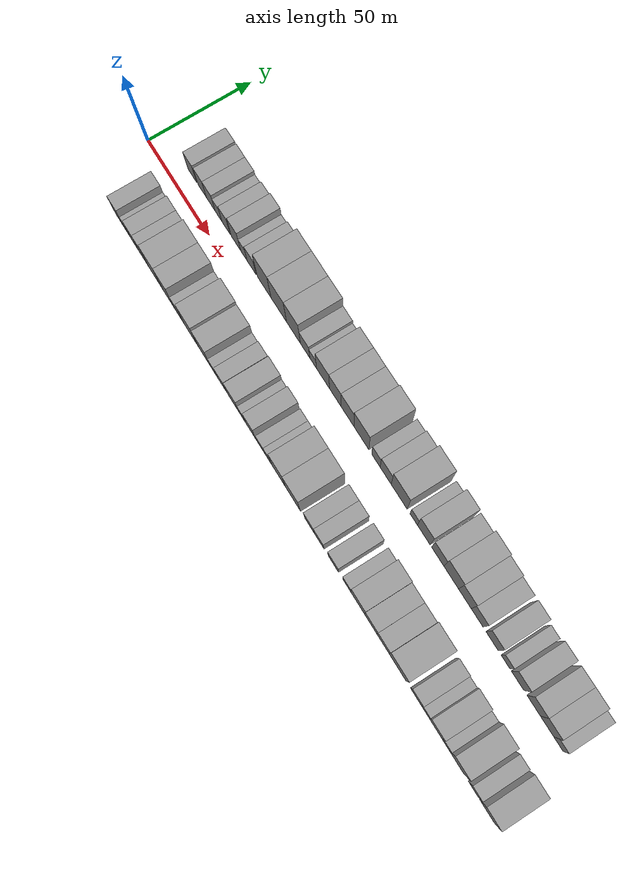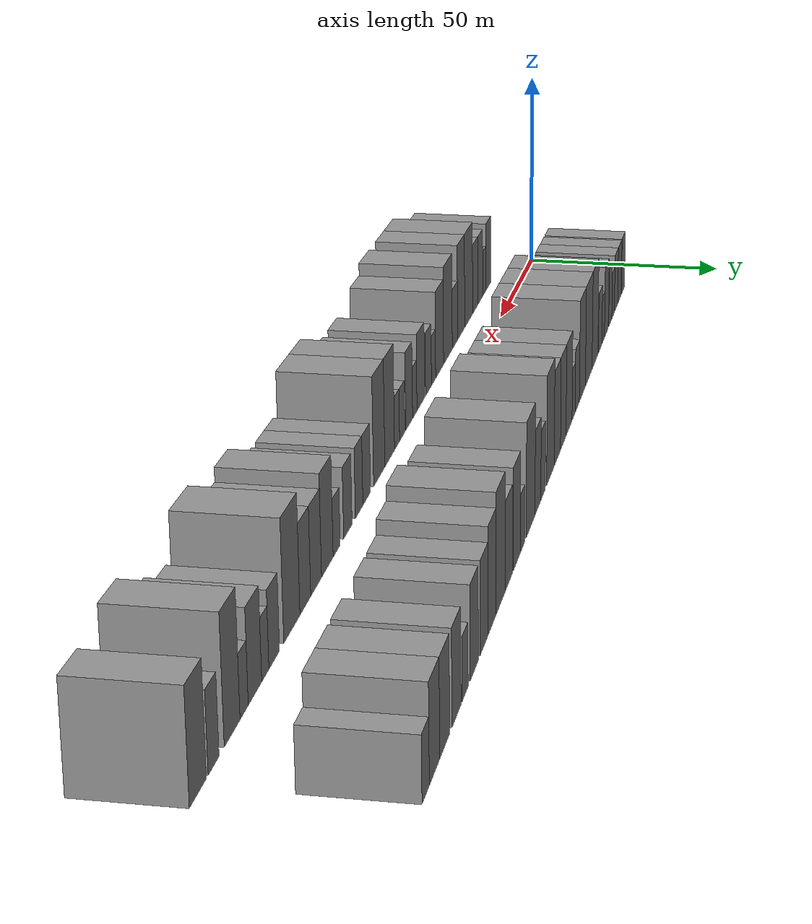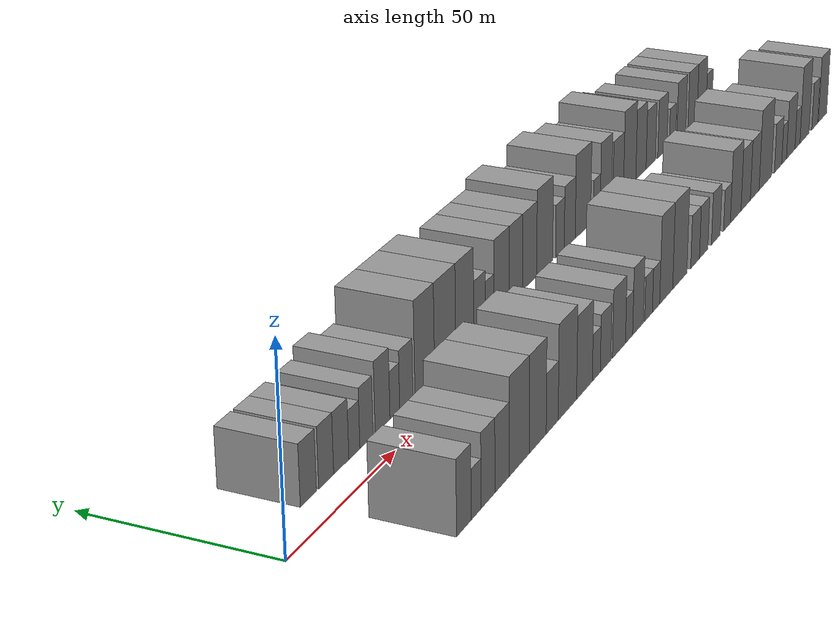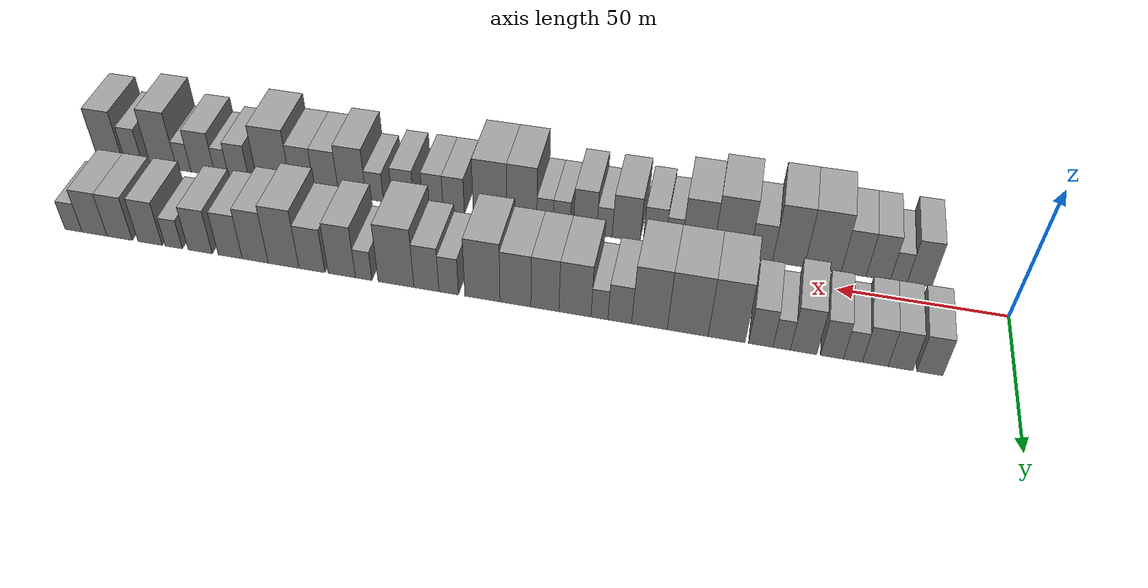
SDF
<sdf version="1.6">
 <world name="default">
  <scene>
   <sky><clouds><speed>12</speed></clouds></sky>
   <ambient>0.4 0.4 0.4 1</ambient>
   <background>0.7 0.7 0.7 1</background>
   <shadows>1</shadows>
  </scene>
  <gravity>0 0 -9.8066</gravity>
  <magnetic_field>6e-06 2.3e-05 -4.2e-05</magnetic_field>
  <physics default="0" name="default_physics" type="ode">
   <ode>
    <solver>
     <type>quick</type>
     <iters>10</iters>
     <sor>1.0</sor>
     <use_dynamic_moi_rescaling>0</use_dynamic_moi_rescaling>
    </solver>
    <constraints>
     <cfm>0</cfm>
     <erp>0.2</erp>
     <contact_max_correcting_vel>100</contact_max_correcting_vel>
     <contact_surface_layer>0.001</contact_surface_layer>
    </constraints>
   </ode>
   <max_step_size>0.004</max_step_size>
   <real_time_factor>1</real_time_factor>
   <real_time_update_rate>250</real_time_update_rate>
  </physics>
  <light name="sun" type="directional">
   <pose>0 0 10 0 0 0</pose>
   <diffuse>0.8 0.8 0.8 1</diffuse>
   <specular>0.2 0.2 0.2 1</specular>
   <attenuation>
    <range>1000</range>
    <constant>0.9</constant>
    <linear>0.01</linear>
    <quadratic>0.001</quadratic>
   </attenuation>
   <direction>-0.5 0.1 -0.9</direction>
  </light>
  <model name="building_1">
   <static>1</static>
   <pose>23.6077 17.5000 0 0.000000 0.000000 1.570796</pose>
   <link name="link">
    <pose>0 0 7.50 0 0 0</pose>
    <collision name="collision"><geometry><box><size>20.0000 7.2154 15.0000</size></box></geometry></collision>
    <visual name="visual">
     <cast_shadows>0</cast_shadows>
     <geometry><box><size>20.0000 7.2154 15.0000</size></box></geometry>
     <material>
      <script>
       <uri>model://grey_wall/materials/scripts</uri>
       <uri>model://grey_wall/materials/textures</uri>
       <name>vrc/grey_wall</name>
      </script>
     </material>
    </visual>
   </link>
  </model>
  <model name="building_2">
   <static>1</static>
   <pose>31.6629 17.5000 0 0.000000 0.000000 1.570796</pose>
   <link name="link">
    <pose>0 0 7.50 0 0 0</pose>
    <collision name="collision"><geometry><box><size>20.0000 6.8950 15.0000</size></box></geometry></collision>
    <visual name="visual">
     <cast_shadows>0</cast_shadows>
     <geometry><box><size>20.0000 6.8950 15.0000</size></box></geometry>
     <material>
      <script>
       <uri>model://grey_wall/materials/scripts</uri>
       <uri>model://grey_wall/materials/textures</uri>
       <name>vrc/grey_wall</name>
      </script>
     </material>
    </visual>
   </link>
  </model>
  <model name="building_3">
   <static>1</static>
   <pose>38.6754 17.5000 0 0.000000 0.000000 1.570796</pose>
   <link name="link">
    <pose>0 0 7.50 0 0 0</pose>
    <collision name="collision"><geometry><box><size>20.0000 7.1300 15.0000</size></box></geometry></collision>
    <visual name="visual">
     <cast_shadows>0</cast_shadows>
     <geometry><box><size>20.0000 7.1300 15.0000</size></box></geometry>
     <material>
      <script>
       <uri>model://grey_wall/materials/scripts</uri>
       <uri>model://grey_wall/materials/textures</uri>
       <name>vrc/grey_wall</name>
      </script>
     </material>
    </visual>
   </link>
  </model>
  <model name="building_4">
   <static>1</static>
   <pose>44.9000 17.5000 0 0.000000 0.000000 1.570796</pose>
   <link name="link">
    <pose>0 0 6.00 0 0 0</pose>
    <collision name="collision"><geometry><box><size>20.0000 5.3193 12.0000</size></box></geometry></collision>
    <visual name="visual">
     <cast_shadows>0</cast_shadows>
     <geometry><box><size>20.0000 5.3193 12.0000</size></box></geometry>
     <material>
      <script>
       <uri>model://grey_wall/materials/scripts</uri>
       <uri>model://grey_wall/materials/textures</uri>
       <name>vrc/grey_wall</name>
      </script>
     </material>
    </visual>
   </link>
  </model>
  <model name="building_5">
   <static>1</static>
   <pose>50.7931 17.5000 0 0.000000 0.000000 1.570796</pose>
   <link name="link">
    <pose>0 0 7.50 0 0 0</pose>
    <collision name="collision"><geometry><box><size>20.0000 6.4668 15.0000</size></box></geometry></collision>
    <visual name="visual">
     <cast_shadows>0</cast_shadows>
     <geometry><box><size>20.0000 6.4668 15.0000</size></box></geometry>
     <material>
      <script>
       <uri>model://grey_wall/materials/scripts</uri>
       <uri>model://grey_wall/materials/textures</uri>
       <name>vrc/grey_wall</name>
      </script>
     </material>
    </visual>
   </link>
  </model>
  <model name="building_6">
   <static>1</static>
   <pose>58.7857 17.5000 0 0.000000 0.000000 1.570796</pose>
   <link name="link">
    <pose>0 0 9.00 0 0 0</pose>
    <collision name="collision"><geometry><box><size>20.0000 7.5184 18.0000</size></box></geometry></collision>
    <visual name="visual">
     <cast_shadows>0</cast_shadows>
     <geometry><box><size>20.0000 7.5184 18.0000</size></box></geometry>
     <material>
      <script>
       <uri>model://grey_wall/materials/scripts</uri>
       <uri>model://grey_wall/materials/textures</uri>
       <name>vrc/grey_wall</name>
      </script>
     </material>
    </visual>
   </link>
  </model>
  <model name="building_7">
   <static>1</static>
   <pose>65.0388 17.5000 0 0.000000 0.000000 1.570796</pose>
   <link name="link">
    <pose>0 0 6.00 0 0 0</pose>
    <collision name="collision"><geometry><box><size>20.0000 4.9879 12.0000</size></box></geometry></collision>
    <visual name="visual">
     <cast_shadows>0</cast_shadows>
     <geometry><box><size>20.0000 4.9879 12.0000</size></box></geometry>
     <material>
      <script>
       <uri>model://grey_wall/materials/scripts</uri>
       <uri>model://grey_wall/materials/textures</uri>
       <name>vrc/grey_wall</name>
      </script>
     </material>
    </visual>
   </link>
  </model>
  <model name="building_8">
   <static>1</static>
   <pose>71.0306 17.5000 0 0.000000 0.000000 1.570796</pose>
   <link name="link">
    <pose>0 0 7.50 0 0 0</pose>
    <collision name="collision"><geometry><box><size>20.0000 6.9957 15.0000</size></box></geometry></collision>
    <visual name="visual">
     <cast_shadows>0</cast_shadows>
     <geometry><box><size>20.0000 6.9957 15.0000</size></box></geometry>
     <material>
      <script>
       <uri>model://grey_wall/materials/scripts</uri>
       <uri>model://grey_wall/materials/textures</uri>
       <name>vrc/grey_wall</name>
      </script>
     </material>
    </visual>
   </link>
  </model>
  <model name="building_9">
   <static>1</static>
   <pose>80.8923 17.5000 0 0.000000 0.000000 1.570796</pose>
   <link name="link">
    <pose>0 0 12.00 0 0 0</pose>
    <collision name="collision"><geometry><box><size>20.0000 10.7277 24.0000</size></box></geometry></collision>
    <visual name="visual">
     <cast_shadows>0</cast_shadows>
     <geometry><box><size>20.0000 10.7277 24.0000</size></box></geometry>
     <material>
      <script>
       <uri>model://grey_wall/materials/scripts</uri>
       <uri>model://grey_wall/materials/textures</uri>
       <name>vrc/grey_wall</name>
      </script>
     </material>
    </visual>
   </link>
  </model>
  <model name="building_10">
   <static>1</static>
   <pose>92.2401 17.5000 0 0.000000 0.000000 1.570796</pose>
   <link name="link">
    <pose>0 0 12.00 0 0 0</pose>
    <collision name="collision"><geometry><box><size>20.0000 11.9680 24.0000</size></box></geometry></collision>
    <visual name="visual">
     <cast_shadows>0</cast_shadows>
     <geometry><box><size>20.0000 11.9680 24.0000</size></box></geometry>
     <material>
      <script>
       <uri>model://grey_wall/materials/scripts</uri>
       <uri>model://grey_wall/materials/textures</uri>
       <name>vrc/grey_wall</name>
      </script>
     </material>
    </visual>
   </link>
  </model>
  <model name="building_11">
   <static>1</static>
   <pose>103.4802 17.5000 0 0.000000 0.000000 1.570796</pose>
   <link name="link">
    <pose>0 0 12.00 0 0 0</pose>
    <collision name="collision"><geometry><box><size>20.0000 10.5121 24.0000</size></box></geometry></collision>
    <visual name="visual">
     <cast_shadows>0</cast_shadows>
     <geometry><box><size>20.0000 10.5121 24.0000</size></box></geometry>
     <material>
      <script>
       <uri>model://grey_wall/materials/scripts</uri>
       <uri>model://grey_wall/materials/textures</uri>
       <name>vrc/grey_wall</name>
      </script>
     </material>
    </visual>
   </link>
  </model>
  <model name="building_12">
   <static>1</static>
   <pose>112.2710 17.5000 0 0.000000 0.000000 1.570796</pose>
   <link name="link">
    <pose>0 0 7.50 0 0 0</pose>
    <collision name="collision"><geometry><box><size>20.0000 7.0695 15.0000</size></box></geometry></collision>
    <visual name="visual">
     <cast_shadows>0</cast_shadows>
     <geometry><box><size>20.0000 7.0695 15.0000</size></box></geometry>
     <material>
      <script>
       <uri>model://grey_wall/materials/scripts</uri>
       <uri>model://grey_wall/materials/textures</uri>
       <name>vrc/grey_wall</name>
      </script>
     </material>
    </visual>
   </link>
  </model>
  <model name="building_13">
   <static>1</static>
   <pose>118.3395 17.5000 0 0.000000 0.000000 1.570796</pose>
   <link name="link">
    <pose>0 0 6.00 0 0 0</pose>
    <collision name="collision"><geometry><box><size>20.0000 5.0676 12.0000</size></box></geometry></collision>
    <visual name="visual">
     <cast_shadows>0</cast_shadows>
     <geometry><box><size>20.0000 5.0676 12.0000</size></box></geometry>
     <material>
      <script>
       <uri>model://grey_wall/materials/scripts</uri>
       <uri>model://grey_wall/materials/textures</uri>
       <name>vrc/grey_wall</name>
      </script>
     </material>
    </visual>
   </link>
  </model>
  <model name="building_14">
   <static>1</static>
   <pose>125.7330 17.5000 0 0.000000 0.000000 1.570796</pose>
   <link name="link">
    <pose>0 0 10.50 0 0 0</pose>
    <collision name="collision"><geometry><box><size>20.0000 9.7193 21.0000</size></box></geometry></collision>
    <visual name="visual">
     <cast_shadows>0</cast_shadows>
     <geometry><box><size>20.0000 9.7193 21.0000</size></box></geometry>
     <material>
      <script>
       <uri>model://grey_wall/materials/scripts</uri>
       <uri>model://grey_wall/materials/textures</uri>
       <name>vrc/grey_wall</name>
      </script>
     </material>
    </visual>
   </link>
  </model>
  <model name="building_15">
   <static>1</static>
   <pose>134.8650 17.5000 0 0.000000 0.000000 1.570796</pose>
   <link name="link">
    <pose>0 0 10.50 0 0 0</pose>
    <collision name="collision"><geometry><box><size>20.0000 8.5447 21.0000</size></box></geometry></collision>
    <visual name="visual">
     <cast_shadows>0</cast_shadows>
     <geometry><box><size>20.0000 8.5447 21.0000</size></box></geometry>
     <material>
      <script>
       <uri>model://grey_wall/materials/scripts</uri>
       <uri>model://grey_wall/materials/textures</uri>
       <name>vrc/grey_wall</name>
      </script>
     </material>
    </visual>
   </link>
  </model>
  <model name="building_16">
   <static>1</static>
   <pose>143.8493 17.5000 0 0.000000 0.000000 1.570796</pose>
   <link name="link">
    <pose>0 0 10.50 0 0 0</pose>
    <collision name="collision"><geometry><box><size>20.0000 9.4239 21.0000</size></box></geometry></collision>
    <visual name="visual">
     <cast_shadows>0</cast_shadows>
     <geometry><box><size>20.0000 9.4239 21.0000</size></box></geometry>
     <material>
      <script>
       <uri>model://grey_wall/materials/scripts</uri>
       <uri>model://grey_wall/materials/textures</uri>
       <name>vrc/grey_wall</name>
      </script>
     </material>
    </visual>
   </link>
  </model>
  <model name="building_17">
   <static>1</static>
   <pose>154.0123 17.5000 0 0.000000 0.000000 1.570796</pose>
   <link name="link">
    <pose>0 0 12.00 0 0 0</pose>
    <collision name="collision"><geometry><box><size>20.0000 10.9021 24.0000</size></box></geometry></collision>
    <visual name="visual">
     <cast_shadows>0</cast_shadows>
     <geometry><box><size>20.0000 10.9021 24.0000</size></box></geometry>
     <material>
      <script>
       <uri>model://grey_wall/materials/scripts</uri>
       <uri>model://grey_wall/materials/textures</uri>
       <name>vrc/grey_wall</name>
      </script>
     </material>
    </visual>
   </link>
  </model>
  <model name="building_18">
   <static>1</static>
   <pose>164.5241 17.5000 0 0.000000 0.000000 1.570796</pose>
   <link name="link">
    <pose>0 0 7.50 0 0 0</pose>
    <collision name="collision"><geometry><box><size>20.0000 6.1215 15.0000</size></box></geometry></collision>
    <visual name="visual">
     <cast_shadows>0</cast_shadows>
     <geometry><box><size>20.0000 6.1215 15.0000</size></box></geometry>
     <material>
      <script>
       <uri>model://grey_wall/materials/scripts</uri>
       <uri>model://grey_wall/materials/textures</uri>
       <name>vrc/grey_wall</name>
      </script>
     </material>
    </visual>
   </link>
  </model>
  <model name="building_19">
   <static>1</static>
   <pose>171.5248 17.5000 0 0.000000 0.000000 1.570796</pose>
   <link name="link">
    <pose>0 0 9.00 0 0 0</pose>
    <collision name="collision"><geometry><box><size>20.0000 7.8799 18.0000</size></box></geometry></collision>
    <visual name="visual">
     <cast_shadows>0</cast_shadows>
     <geometry><box><size>20.0000 7.8799 18.0000</size></box></geometry>
     <material>
      <script>
       <uri>model://grey_wall/materials/scripts</uri>
       <uri>model://grey_wall/materials/textures</uri>
       <name>vrc/grey_wall</name>
      </script>
     </material>
    </visual>
   </link>
  </model>
  <model name="building_20">
   <static>1</static>
   <pose>181.1410 17.5000 0 0.000000 0.000000 1.570796</pose>
   <link name="link">
    <pose>0 0 12.00 0 0 0</pose>
    <collision name="collision"><geometry><box><size>20.0000 11.3526 24.0000</size></box></geometry></collision>
    <visual name="visual">
     <cast_shadows>0</cast_shadows>
     <geometry><box><size>20.0000 11.3526 24.0000</size></box></geometry>
     <material>
      <script>
       <uri>model://grey_wall/materials/scripts</uri>
       <uri>model://grey_wall/materials/textures</uri>
       <name>vrc/grey_wall</name>
      </script>
     </material>
    </visual>
   </link>
  </model>
  <model name="building_21">
   <static>1</static>
   <pose>191.4542 17.5000 0 0.000000 0.000000 1.570796</pose>
   <link name="link">
    <pose>0 0 6.00 0 0 0</pose>
    <collision name="collision"><geometry><box><size>20.0000 5.2737 12.0000</size></box></geometry></collision>
    <visual name="visual">
     <cast_shadows>0</cast_shadows>
     <geometry><box><size>20.0000 5.2737 12.0000</size></box></geometry>
     <material>
      <script>
       <uri>model://grey_wall/materials/scripts</uri>
       <uri>model://grey_wall/materials/textures</uri>
       <name>vrc/grey_wall</name>
      </script>
     </material>
    </visual>
   </link>
  </model>
  <model name="building_22">
   <static>1</static>
   <pose>198.5105 17.5000 0 0.000000 0.000000 1.570796</pose>
   <link name="link">
    <pose>0 0 10.50 0 0 0</pose>
    <collision name="collision"><geometry><box><size>20.0000 8.8389 21.0000</size></box></geometry></collision>
    <visual name="visual">
     <cast_shadows>0</cast_shadows>
     <geometry><box><size>20.0000 8.8389 21.0000</size></box></geometry>
     <material>
      <script>
       <uri>model://grey_wall/materials/scripts</uri>
       <uri>model://grey_wall/materials/textures</uri>
       <name>vrc/grey_wall</name>
      </script>
     </material>
    </visual>
   </link>
  </model>
  <model name="building_23">
   <static>1</static>
   <pose>208.1650 17.5000 0 0.000000 0.000000 1.570796</pose>
   <link name="link">
    <pose>0 0 9.00 0 0 0</pose>
    <collision name="collision"><geometry><box><size>20.0000 8.4702 18.0000</size></box></geometry></collision>
    <visual name="visual">
     <cast_shadows>0</cast_shadows>
     <geometry><box><size>20.0000 8.4702 18.0000</size></box></geometry>
     <material>
      <script>
       <uri>model://grey_wall/materials/scripts</uri>
       <uri>model://grey_wall/materials/textures</uri>
       <name>vrc/grey_wall</name>
      </script>
     </material>
    </visual>
   </link>
  </model>
  <model name="building_24">
   <static>1</static>
   <pose>217.4503 17.5000 0 0.000000 0.000000 1.570796</pose>
   <link name="link">
    <pose>0 0 12.00 0 0 0</pose>
    <collision name="collision"><geometry><box><size>20.0000 10.1003 24.0000</size></box></geometry></collision>
    <visual name="visual">
     <cast_shadows>0</cast_shadows>
     <geometry><box><size>20.0000 10.1003 24.0000</size></box></geometry>
     <material>
      <script>
       <uri>model://grey_wall/materials/scripts</uri>
       <uri>model://grey_wall/materials/textures</uri>
       <name>vrc/grey_wall</name>
      </script>
     </material>
    </visual>
   </link>
  </model>
  <model name="building_25">
   <static>1</static>
   <pose>226.7920 17.5000 0 0.000000 0.000000 1.570796</pose>
   <link name="link">
    <pose>0 0 10.50 0 0 0</pose>
    <collision name="collision"><geometry><box><size>20.0000 8.5831 21.0000</size></box></geometry></collision>
    <visual name="visual">
     <cast_shadows>0</cast_shadows>
     <geometry><box><size>20.0000 8.5831 21.0000</size></box></geometry>
     <material>
      <script>
       <uri>model://grey_wall/materials/scripts</uri>
       <uri>model://grey_wall/materials/textures</uri>
       <name>vrc/grey_wall</name>
      </script>
     </material>
    </visual>
   </link>
  </model>
  <model name="building_26">
   <static>1</static>
   <pose>235.0983 17.5000 0 0.000000 0.000000 1.570796</pose>
   <link name="link">
    <pose>0 0 9.00 0 0 0</pose>
    <collision name="collision"><geometry><box><size>20.0000 8.0295 18.0000</size></box></geometry></collision>
    <visual name="visual">
     <cast_shadows>0</cast_shadows>
     <geometry><box><size>20.0000 8.0295 18.0000</size></box></geometry>
     <material>
      <script>
       <uri>model://grey_wall/materials/scripts</uri>
       <uri>model://grey_wall/materials/textures</uri>
       <name>vrc/grey_wall</name>
      </script>
     </material>
    </visual>
   </link>
  </model>
  <model name="building_27">
   <static>1</static>
   <pose>245.1571 17.5000 0 0.000000 0.000000 1.570796</pose>
   <link name="link">
    <pose>0 0 9.00 0 0 0</pose>
    <collision name="collision"><geometry><box><size>20.0000 8.0883 18.0000</size></box></geometry></collision>
    <visual name="visual">
     <cast_shadows>0</cast_shadows>
     <geometry><box><size>20.0000 8.0883 18.0000</size></box></geometry>
     <material>
      <script>
       <uri>model://grey_wall/materials/scripts</uri>
       <uri>model://grey_wall/materials/textures</uri>
       <name>vrc/grey_wall</name>
      </script>
     </material>
    </visual>
   </link>
  </model>
  <model name="building_28">
   <static>1</static>
   <pose>254.1018 17.5000 0 0.000000 0.000000 1.570796</pose>
   <link name="link">
    <pose>0 0 6.00 0 0 0</pose>
    <collision name="collision"><geometry><box><size>20.0000 5.8010 12.0000</size></box></geometry></collision>
    <visual name="visual">
     <cast_shadows>0</cast_shadows>
     <geometry><box><size>20.0000 5.8010 12.0000</size></box></geometry>
     <material>
      <script>
       <uri>model://grey_wall/materials/scripts</uri>
       <uri>model://grey_wall/materials/textures</uri>
       <name>vrc/grey_wall</name>
      </script>
     </material>
    </visual>
   </link>
  </model>
  <model name="building_29">
   <static>1</static>
   <pose>262.1307 17.5000 0 0.000000 0.000000 1.570796</pose>
   <link name="link">
    <pose>0 0 9.00 0 0 0</pose>
    <collision name="collision"><geometry><box><size>20.0000 8.2567 18.0000</size></box></geometry></collision>
    <visual name="visual">
     <cast_shadows>0</cast_shadows>
     <geometry><box><size>20.0000 8.2567 18.0000</size></box></geometry>
     <material>
      <script>
       <uri>model://grey_wall/materials/scripts</uri>
       <uri>model://grey_wall/materials/textures</uri>
       <name>vrc/grey_wall</name>
      </script>
     </material>
    </visual>
   </link>
  </model>
  <model name="building_30">
   <static>1</static>
   <pose>272.5766 17.5000 0 0.000000 0.000000 1.570796</pose>
   <link name="link">
    <pose>0 0 9.00 0 0 0</pose>
    <collision name="collision"><geometry><box><size>20.0000 8.6352 18.0000</size></box></geometry></collision>
    <visual name="visual">
     <cast_shadows>0</cast_shadows>
     <geometry><box><size>20.0000 8.6352 18.0000</size></box></geometry>
     <material>
      <script>
       <uri>model://grey_wall/materials/scripts</uri>
       <uri>model://grey_wall/materials/textures</uri>
       <name>vrc/grey_wall</name>
      </script>
     </material>
    </visual>
   </link>
  </model>
  <model name="building_31">
   <static>1</static>
   <pose>281.2514 17.5000 0 0.000000 0.000000 1.570796</pose>
   <link name="link">
    <pose>0 0 9.00 0 0 0</pose>
    <collision name="collision"><geometry><box><size>20.0000 8.7143 18.0000</size></box></geometry></collision>
    <visual name="visual">
     <cast_shadows>0</cast_shadows>
     <geometry><box><size>20.0000 8.7143 18.0000</size></box></geometry>
     <material>
      <script>
       <uri>model://grey_wall/materials/scripts</uri>
       <uri>model://grey_wall/materials/textures</uri>
       <name>vrc/grey_wall</name>
      </script>
     </material>
    </visual>
   </link>
  </model>
  <model name="building_32">
   <static>1</static>
   <pose>288.5877 17.5000 0 0.000000 0.000000 1.570796</pose>
   <link name="link">
    <pose>0 0 6.00 0 0 0</pose>
    <collision name="collision"><geometry><box><size>20.0000 5.9582 12.0000</size></box></geometry></collision>
    <visual name="visual">
     <cast_shadows>0</cast_shadows>
     <geometry><box><size>20.0000 5.9582 12.0000</size></box></geometry>
     <material>
      <script>
       <uri>model://grey_wall/materials/scripts</uri>
       <uri>model://grey_wall/materials/textures</uri>
       <name>vrc/grey_wall</name>
      </script>
     </material>
    </visual>
   </link>
  </model>
  <model name="building_33">
   <static>1</static>
   <pose>25.6503 -17.5000 0 0.000000 0.000000 1.570796</pose>
   <link name="link">
    <pose>0 0 9.00 0 0 0</pose>
    <collision name="collision"><geometry><box><size>20.0000 7.3007 18.0000</size></box></geometry></collision>
    <visual name="visual">
     <cast_shadows>0</cast_shadows>
     <geometry><box><size>20.0000 7.3007 18.0000</size></box></geometry>
     <material>
      <script>
       <uri>model://grey_wall/materials/scripts</uri>
       <uri>model://grey_wall/materials/textures</uri>
       <name>vrc/grey_wall</name>
      </script>
     </material>
    </visual>
   </link>
  </model>
  <model name="building_34">
   <static>1</static>
   <pose>31.7926 -17.5000 0 0.000000 0.000000 1.570796</pose>
   <link name="link">
    <pose>0 0 6.00 0 0 0</pose>
    <collision name="collision"><geometry><box><size>20.0000 4.9839 12.0000</size></box></geometry></collision>
    <visual name="visual">
     <cast_shadows>0</cast_shadows>
     <geometry><box><size>20.0000 4.9839 12.0000</size></box></geometry>
     <material>
      <script>
       <uri>model://grey_wall/materials/scripts</uri>
       <uri>model://grey_wall/materials/textures</uri>
       <name>vrc/grey_wall</name>
      </script>
     </material>
    </visual>
   </link>
  </model>
  <model name="building_35">
   <static>1</static>
   <pose>37.9066 -17.5000 0 0.000000 0.000000 1.570796</pose>
   <link name="link">
    <pose>0 0 9.00 0 0 0</pose>
    <collision name="collision"><geometry><box><size>20.0000 7.2442 18.0000</size></box></geometry></collision>
    <visual name="visual">
     <cast_shadows>0</cast_shadows>
     <geometry><box><size>20.0000 7.2442 18.0000</size></box></geometry>
     <material>
      <script>
       <uri>model://grey_wall/materials/scripts</uri>
       <uri>model://grey_wall/materials/textures</uri>
       <name>vrc/grey_wall</name>
      </script>
     </material>
    </visual>
   </link>
  </model>
  <model name="building_36">
   <static>1</static>
   <pose>45.3088 -17.5000 0 0.000000 0.000000 1.570796</pose>
   <link name="link">
    <pose>0 0 9.00 0 0 0</pose>
    <collision name="collision"><geometry><box><size>20.0000 7.5601 18.0000</size></box></geometry></collision>
    <visual name="visual">
     <cast_shadows>0</cast_shadows>
     <geometry><box><size>20.0000 7.5601 18.0000</size></box></geometry>
     <material>
      <script>
       <uri>model://grey_wall/materials/scripts</uri>
       <uri>model://grey_wall/materials/textures</uri>
       <name>vrc/grey_wall</name>
      </script>
     </material>
    </visual>
   </link>
  </model>
  <model name="building_37">
   <static>1</static>
   <pose>54.6776 -17.5000 0 0.000000 0.000000 1.570796</pose>
   <link name="link">
    <pose>0 0 12.00 0 0 0</pose>
    <collision name="collision"><geometry><box><size>20.0000 11.1776 24.0000</size></box></geometry></collision>
    <visual name="visual">
     <cast_shadows>0</cast_shadows>
     <geometry><box><size>20.0000 11.1776 24.0000</size></box></geometry>
     <material>
      <script>
       <uri>model://grey_wall/materials/scripts</uri>
       <uri>model://grey_wall/materials/textures</uri>
       <name>vrc/grey_wall</name>
      </script>
     </material>
    </visual>
   </link>
  </model>
  <model name="building_38">
   <static>1</static>
   <pose>65.1453 -17.5000 0 0.000000 0.000000 1.570796</pose>
   <link name="link">
    <pose>0 0 12.00 0 0 0</pose>
    <collision name="collision"><geometry><box><size>20.0000 9.7577 24.0000</size></box></geometry></collision>
    <visual name="visual">
     <cast_shadows>0</cast_shadows>
     <geometry><box><size>20.0000 9.7577 24.0000</size></box></geometry>
     <material>
      <script>
       <uri>model://grey_wall/materials/scripts</uri>
       <uri>model://grey_wall/materials/textures</uri>
       <name>vrc/grey_wall</name>
      </script>
     </material>
    </visual>
   </link>
  </model>
  <model name="building_39">
   <static>1</static>
   <pose>73.5658 -17.5000 0 0.000000 0.000000 1.570796</pose>
   <link name="link">
    <pose>0 0 7.50 0 0 0</pose>
    <collision name="collision"><geometry><box><size>20.0000 7.0833 15.0000</size></box></geometry></collision>
    <visual name="visual">
     <cast_shadows>0</cast_shadows>
     <geometry><box><size>20.0000 7.0833 15.0000</size></box></geometry>
     <material>
      <script>
       <uri>model://grey_wall/materials/scripts</uri>
       <uri>model://grey_wall/materials/textures</uri>
       <name>vrc/grey_wall</name>
      </script>
     </material>
    </visual>
   </link>
  </model>
  <model name="building_40">
   <static>1</static>
   <pose>82.7263 -17.5000 0 0.000000 0.000000 1.570796</pose>
   <link name="link">
    <pose>0 0 12.00 0 0 0</pose>
    <collision name="collision"><geometry><box><size>20.0000 11.2377 24.0000</size></box></geometry></collision>
    <visual name="visual">
     <cast_shadows>0</cast_shadows>
     <geometry><box><size>20.0000 11.2377 24.0000</size></box></geometry>
     <material>
      <script>
       <uri>model://grey_wall/materials/scripts</uri>
       <uri>model://grey_wall/materials/textures</uri>
       <name>vrc/grey_wall</name>
      </script>
     </material>
    </visual>
   </link>
  </model>
  <model name="building_41">
   <static>1</static>
   <pose>93.3183 -17.5000 0 0.000000 0.000000 1.570796</pose>
   <link name="link">
    <pose>0 0 10.50 0 0 0</pose>
    <collision name="collision"><geometry><box><size>20.0000 9.9463 21.0000</size></box></geometry></collision>
    <visual name="visual">
     <cast_shadows>0</cast_shadows>
     <geometry><box><size>20.0000 9.9463 21.0000</size></box></geometry>
     <material>
      <script>
       <uri>model://grey_wall/materials/scripts</uri>
       <uri>model://grey_wall/materials/textures</uri>
       <name>vrc/grey_wall</name>
      </script>
     </material>
    </visual>
   </link>
  </model>
  <model name="building_42">
   <static>1</static>
   <pose>100.8537 -17.5000 0 0.000000 0.000000 1.570796</pose>
   <link name="link">
    <pose>0 0 6.00 0 0 0</pose>
    <collision name="collision"><geometry><box><size>20.0000 5.1244 12.0000</size></box></geometry></collision>
    <visual name="visual">
     <cast_shadows>0</cast_shadows>
     <geometry><box><size>20.0000 5.1244 12.0000</size></box></geometry>
     <material>
      <script>
       <uri>model://grey_wall/materials/scripts</uri>
       <uri>model://grey_wall/materials/textures</uri>
       <name>vrc/grey_wall</name>
      </script>
     </material>
    </visual>
   </link>
  </model>
  <model name="building_43">
   <static>1</static>
   <pose>106.9307 -17.5000 0 0.000000 0.000000 1.570796</pose>
   <link name="link">
    <pose>0 0 7.50 0 0 0</pose>
    <collision name="collision"><geometry><box><size>20.0000 7.0296 15.0000</size></box></geometry></collision>
    <visual name="visual">
     <cast_shadows>0</cast_shadows>
     <geometry><box><size>20.0000 7.0296 15.0000</size></box></geometry>
     <material>
      <script>
       <uri>model://grey_wall/materials/scripts</uri>
       <uri>model://grey_wall/materials/textures</uri>
       <name>vrc/grey_wall</name>
      </script>
     </material>
    </visual>
   </link>
  </model>
  <model name="building_44">
   <static>1</static>
   <pose>115.9036 -17.5000 0 0.000000 0.000000 1.570796</pose>
   <link name="link">
    <pose>0 0 9.00 0 0 0</pose>
    <collision name="collision"><geometry><box><size>20.0000 8.9162 18.0000</size></box></geometry></collision>
    <visual name="visual">
     <cast_shadows>0</cast_shadows>
     <geometry><box><size>20.0000 8.9162 18.0000</size></box></geometry>
     <material>
      <script>
       <uri>model://grey_wall/materials/scripts</uri>
       <uri>model://grey_wall/materials/textures</uri>
       <name>vrc/grey_wall</name>
      </script>
     </material>
    </visual>
   </link>
  </model>
  <model name="building_45">
   <static>1</static>
   <pose>122.8456 -17.5000 0 0.000000 0.000000 1.570796</pose>
   <link name="link">
    <pose>0 0 6.00 0 0 0</pose>
    <collision name="collision"><geometry><box><size>20.0000 4.9677 12.0000</size></box></geometry></collision>
    <visual name="visual">
     <cast_shadows>0</cast_shadows>
     <geometry><box><size>20.0000 4.9677 12.0000</size></box></geometry>
     <material>
      <script>
       <uri>model://grey_wall/materials/scripts</uri>
       <uri>model://grey_wall/materials/textures</uri>
       <name>vrc/grey_wall</name>
      </script>
     </material>
    </visual>
   </link>
  </model>
  <model name="building_46">
   <static>1</static>
   <pose>129.1185 -17.5000 0 0.000000 0.000000 1.570796</pose>
   <link name="link">
    <pose>0 0 9.00 0 0 0</pose>
    <collision name="collision"><geometry><box><size>20.0000 7.5782 18.0000</size></box></geometry></collision>
    <visual name="visual">
     <cast_shadows>0</cast_shadows>
     <geometry><box><size>20.0000 7.5782 18.0000</size></box></geometry>
     <material>
      <script>
       <uri>model://grey_wall/materials/scripts</uri>
       <uri>model://grey_wall/materials/textures</uri>
       <name>vrc/grey_wall</name>
      </script>
     </material>
    </visual>
   </link>
  </model>
  <model name="building_47">
   <static>1</static>
   <pose>136.7117 -17.5000 0 0.000000 0.000000 1.570796</pose>
   <link name="link">
    <pose>0 0 6.00 0 0 0</pose>
    <collision name="collision"><geometry><box><size>20.0000 5.6082 12.0000</size></box></geometry></collision>
    <visual name="visual">
     <cast_shadows>0</cast_shadows>
     <geometry><box><size>20.0000 5.6082 12.0000</size></box></geometry>
     <material>
      <script>
       <uri>model://grey_wall/materials/scripts</uri>
       <uri>model://grey_wall/materials/textures</uri>
       <name>vrc/grey_wall</name>
      </script>
     </material>
    </visual>
   </link>
  </model>
  <model name="building_48">
   <static>1</static>
   <pose>142.1843 -17.5000 0 0.000000 0.000000 1.570796</pose>
   <link name="link">
    <pose>0 0 6.00 0 0 0</pose>
    <collision name="collision"><geometry><box><size>20.0000 5.3368 12.0000</size></box></geometry></collision>
    <visual name="visual">
     <cast_shadows>0</cast_shadows>
     <geometry><box><size>20.0000 5.3368 12.0000</size></box></geometry>
     <material>
      <script>
       <uri>model://grey_wall/materials/scripts</uri>
       <uri>model://grey_wall/materials/textures</uri>
       <name>vrc/grey_wall</name>
      </script>
     </material>
    </visual>
   </link>
  </model>
  <model name="building_49">
   <static>1</static>
   <pose>149.7753 -17.5000 0 0.000000 0.000000 1.570796</pose>
   <link name="link">
    <pose>0 0 12.00 0 0 0</pose>
    <collision name="collision"><geometry><box><size>20.0000 9.8453 24.0000</size></box></geometry></collision>
    <visual name="visual">
     <cast_shadows>0</cast_shadows>
     <geometry><box><size>20.0000 9.8453 24.0000</size></box></geometry>
     <material>
      <script>
       <uri>model://grey_wall/materials/scripts</uri>
       <uri>model://grey_wall/materials/textures</uri>
       <name>vrc/grey_wall</name>
      </script>
     </material>
    </visual>
   </link>
  </model>
  <model name="building_50">
   <static>1</static>
   <pose>160.2455 -17.5000 0 0.000000 0.000000 1.570796</pose>
   <link name="link">
    <pose>0 0 12.00 0 0 0</pose>
    <collision name="collision"><geometry><box><size>20.0000 11.0951 24.0000</size></box></geometry></collision>
    <visual name="visual">
     <cast_shadows>0</cast_shadows>
     <geometry><box><size>20.0000 11.0951 24.0000</size></box></geometry>
     <material>
      <script>
       <uri>model://grey_wall/materials/scripts</uri>
       <uri>model://grey_wall/materials/textures</uri>
       <name>vrc/grey_wall</name>
      </script>
     </material>
    </visual>
   </link>
  </model>
  <model name="building_51">
   <static>1</static>
   <pose>172.3615 -17.5000 0 0.000000 0.000000 1.570796</pose>
   <link name="link">
    <pose>0 0 7.50 0 0 0</pose>
    <collision name="collision"><geometry><box><size>20.0000 7.1368 15.0000</size></box></geometry></collision>
    <visual name="visual">
     <cast_shadows>0</cast_shadows>
     <geometry><box><size>20.0000 7.1368 15.0000</size></box></geometry>
     <material>
      <script>
       <uri>model://grey_wall/materials/scripts</uri>
       <uri>model://grey_wall/materials/textures</uri>
       <name>vrc/grey_wall</name>
      </script>
     </material>
    </visual>
   </link>
  </model>
  <model name="building_52">
   <static>1</static>
   <pose>179.3857 -17.5000 0 0.000000 0.000000 1.570796</pose>
   <link name="link">
    <pose>0 0 7.50 0 0 0</pose>
    <collision name="collision"><geometry><box><size>20.0000 6.9116 15.0000</size></box></geometry></collision>
    <visual name="visual">
     <cast_shadows>0</cast_shadows>
     <geometry><box><size>20.0000 6.9116 15.0000</size></box></geometry>
     <material>
      <script>
       <uri>model://grey_wall/materials/scripts</uri>
       <uri>model://grey_wall/materials/textures</uri>
       <name>vrc/grey_wall</name>
      </script>
     </material>
    </visual>
   </link>
  </model>
  <model name="building_53">
   <static>1</static>
   <pose>189.5182 -17.5000 0 0.000000 0.000000 1.570796</pose>
   <link name="link">
    <pose>0 0 7.50 0 0 0</pose>
    <collision name="collision"><geometry><box><size>20.0000 7.3535 15.0000</size></box></geometry></collision>
    <visual name="visual">
     <cast_shadows>0</cast_shadows>
     <geometry><box><size>20.0000 7.3535 15.0000</size></box></geometry>
     <material>
      <script>
       <uri>model://grey_wall/materials/scripts</uri>
       <uri>model://grey_wall/materials/textures</uri>
       <name>vrc/grey_wall</name>
      </script>
     </material>
    </visual>
   </link>
  </model>
  <model name="building_54">
   <static>1</static>
   <pose>199.1789 -17.5000 0 0.000000 0.000000 1.570796</pose>
   <link name="link">
    <pose>0 0 6.00 0 0 0</pose>
    <collision name="collision"><geometry><box><size>20.0000 5.9679 12.0000</size></box></geometry></collision>
    <visual name="visual">
     <cast_shadows>0</cast_shadows>
     <geometry><box><size>20.0000 5.9679 12.0000</size></box></geometry>
     <material>
      <script>
       <uri>model://grey_wall/materials/scripts</uri>
       <uri>model://grey_wall/materials/textures</uri>
       <name>vrc/grey_wall</name>
      </script>
     </material>
    </visual>
   </link>
  </model>
  <model name="building_55">
   <static>1</static>
   <pose>206.9061 -17.5000 0 0.000000 0.000000 1.570796</pose>
   <link name="link">
    <pose>0 0 10.50 0 0 0</pose>
    <collision name="collision"><geometry><box><size>20.0000 9.4864 21.0000</size></box></geometry></collision>
    <visual name="visual">
     <cast_shadows>0</cast_shadows>
     <geometry><box><size>20.0000 9.4864 21.0000</size></box></geometry>
     <material>
      <script>
       <uri>model://grey_wall/materials/scripts</uri>
       <uri>model://grey_wall/materials/textures</uri>
       <name>vrc/grey_wall</name>
      </script>
     </material>
    </visual>
   </link>
  </model>
  <model name="building_56">
   <static>1</static>
   <pose>215.9079 -17.5000 0 0.000000 0.000000 1.570796</pose>
   <link name="link">
    <pose>0 0 9.00 0 0 0</pose>
    <collision name="collision"><geometry><box><size>20.0000 8.5171 18.0000</size></box></geometry></collision>
    <visual name="visual">
     <cast_shadows>0</cast_shadows>
     <geometry><box><size>20.0000 8.5171 18.0000</size></box></geometry>
     <material>
      <script>
       <uri>model://grey_wall/materials/scripts</uri>
       <uri>model://grey_wall/materials/textures</uri>
       <name>vrc/grey_wall</name>
      </script>
     </material>
    </visual>
   </link>
  </model>
  <model name="building_57">
   <static>1</static>
   <pose>224.2815 -17.5000 0 0.000000 0.000000 1.570796</pose>
   <link name="link">
    <pose>0 0 9.00 0 0 0</pose>
    <collision name="collision"><geometry><box><size>20.0000 8.2300 18.0000</size></box></geometry></collision>
    <visual name="visual">
     <cast_shadows>0</cast_shadows>
     <geometry><box><size>20.0000 8.2300 18.0000</size></box></geometry>
     <material>
      <script>
       <uri>model://grey_wall/materials/scripts</uri>
       <uri>model://grey_wall/materials/textures</uri>
       <name>vrc/grey_wall</name>
      </script>
     </material>
    </visual>
   </link>
  </model>
  <model name="building_58">
   <static>1</static>
   <pose>234.2946 -17.5000 0 0.000000 0.000000 1.570796</pose>
   <link name="link">
    <pose>0 0 12.00 0 0 0</pose>
    <collision name="collision"><geometry><box><size>20.0000 11.7963 24.0000</size></box></geometry></collision>
    <visual name="visual">
     <cast_shadows>0</cast_shadows>
     <geometry><box><size>20.0000 11.7963 24.0000</size></box></geometry>
     <material>
      <script>
       <uri>model://grey_wall/materials/scripts</uri>
       <uri>model://grey_wall/materials/textures</uri>
       <name>vrc/grey_wall</name>
      </script>
     </material>
    </visual>
   </link>
  </model>
  <model name="building_59">
   <static>1</static>
   <pose>246.8380 -17.5000 0 0.000000 0.000000 1.570796</pose>
   <link name="link">
    <pose>0 0 7.50 0 0 0</pose>
    <collision name="collision"><geometry><box><size>20.0000 7.2904 15.0000</size></box></geometry></collision>
    <visual name="visual">
     <cast_shadows>0</cast_shadows>
     <geometry><box><size>20.0000 7.2904 15.0000</size></box></geometry>
     <material>
      <script>
       <uri>model://grey_wall/materials/scripts</uri>
       <uri>model://grey_wall/materials/textures</uri>
       <name>vrc/grey_wall</name>
      </script>
     </material>
    </visual>
   </link>
  </model>
  <model name="building_60">
   <static>1</static>
   <pose>252.9049 -17.5000 0 0.000000 0.000000 1.570796</pose>
   <link name="link">
    <pose>0 0 6.00 0 0 0</pose>
    <collision name="collision"><geometry><box><size>20.0000 4.8434 12.0000</size></box></geometry></collision>
    <visual name="visual">
     <cast_shadows>0</cast_shadows>
     <geometry><box><size>20.0000 4.8434 12.0000</size></box></geometry>
     <material>
      <script>
       <uri>model://grey_wall/materials/scripts</uri>
       <uri>model://grey_wall/materials/textures</uri>
       <name>vrc/grey_wall</name>
      </script>
     </material>
    </visual>
   </link>
  </model>
  <model name="building_61">
   <static>1</static>
   <pose>259.6987 -17.5000 0 0.000000 0.000000 1.570796</pose>
   <link name="link">
    <pose>0 0 9.00 0 0 0</pose>
    <collision name="collision"><geometry><box><size>20.0000 8.7443 18.0000</size></box></geometry></collision>
    <visual name="visual">
     <cast_shadows>0</cast_shadows>
     <geometry><box><size>20.0000 8.7443 18.0000</size></box></geometry>
     <material>
      <script>
       <uri>model://grey_wall/materials/scripts</uri>
       <uri>model://grey_wall/materials/textures</uri>
       <name>vrc/grey_wall</name>
      </script>
     </material>
    </visual>
   </link>
  </model>
  <model name="building_62">
   <static>1</static>
   <pose>266.6542 -17.5000 0 0.000000 0.000000 1.570796</pose>
   <link name="link">
    <pose>0 0 6.00 0 0 0</pose>
    <collision name="collision"><geometry><box><size>20.0000 5.1668 12.0000</size></box></geometry></collision>
    <visual name="visual">
     <cast_shadows>0</cast_shadows>
     <geometry><box><size>20.0000 5.1668 12.0000</size></box></geometry>
     <material>
      <script>
       <uri>model://grey_wall/materials/scripts</uri>
       <uri>model://grey_wall/materials/textures</uri>
       <name>vrc/grey_wall</name>
      </script>
     </material>
    </visual>
   </link>
  </model>
  <model name="building_63">
   <static>1</static>
   <pose>274.0417 -17.5000 0 0.000000 0.000000 1.570796</pose>
   <link name="link">
    <pose>0 0 12.00 0 0 0</pose>
    <collision name="collision"><geometry><box><size>20.0000 9.6083 24.0000</size></box></geometry></collision>
    <visual name="visual">
     <cast_shadows>0</cast_shadows>
     <geometry><box><size>20.0000 9.6083 24.0000</size></box></geometry>
     <material>
      <script>
       <uri>model://grey_wall/materials/scripts</uri>
       <uri>model://grey_wall/materials/textures</uri>
       <name>vrc/grey_wall</name>
      </script>
     </material>
    </visual>
   </link>
  </model>
  <model name="building_64">
   <static>1</static>
   <pose>285.0172 -17.5000 0 0.000000 0.000000 1.570796</pose>
   <link name="link">
    <pose>0 0 7.50 0 0 0</pose>
    <collision name="collision"><geometry><box><size>20.0000 6.3428 15.0000</size></box></geometry></collision>
    <visual name="visual">
     <cast_shadows>0</cast_shadows>
     <geometry><box><size>20.0000 6.3428 15.0000</size></box></geometry>
     <material>
      <script>
       <uri>model://grey_wall/materials/scripts</uri>
       <uri>model://grey_wall/materials/textures</uri>
       <name>vrc/grey_wall</name>
      </script>
     </material>
    </visual>
   </link>
  </model>
  <model name="building_65">
   <static>1</static>
   <pose>293.8834 -17.5000 0 0.000000 0.000000 1.570796</pose>
   <link name="link">
    <pose>0 0 10.50 0 0 0</pose>
    <collision name="collision"><geometry><box><size>20.0000 9.3895 21.0000</size></box></geometry></collision>
    <visual name="visual">
     <cast_shadows>0</cast_shadows>
     <geometry><box><size>20.0000 9.3895 21.0000</size></box></geometry>
     <material>
      <script>
       <uri>model://grey_wall/materials/scripts</uri>
       <uri>model://grey_wall/materials/textures</uri>
       <name>vrc/grey_wall</name>
      </script>
     </material>
    </visual>
   </link>
  </model>
 </world>
</sdf>
